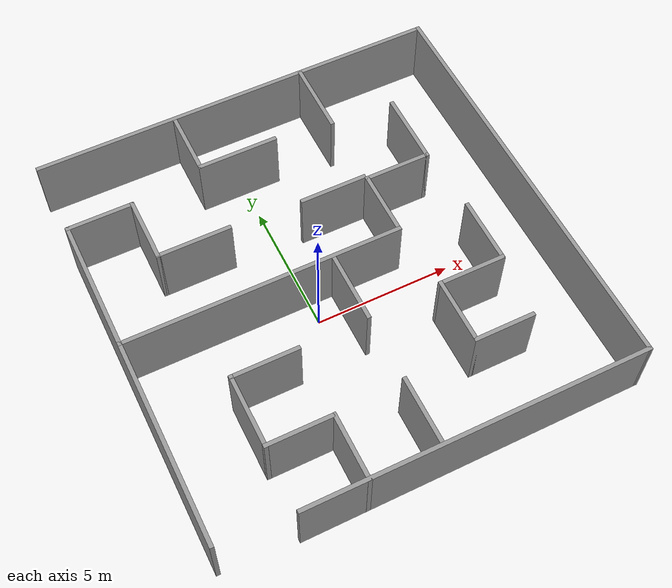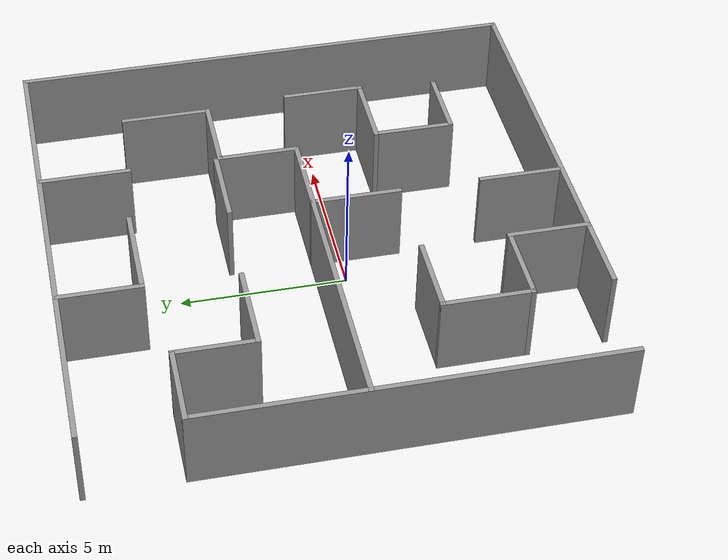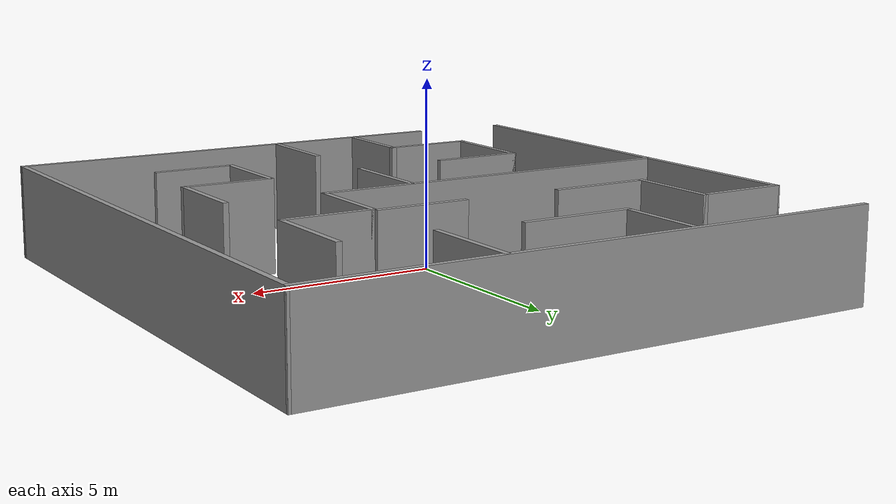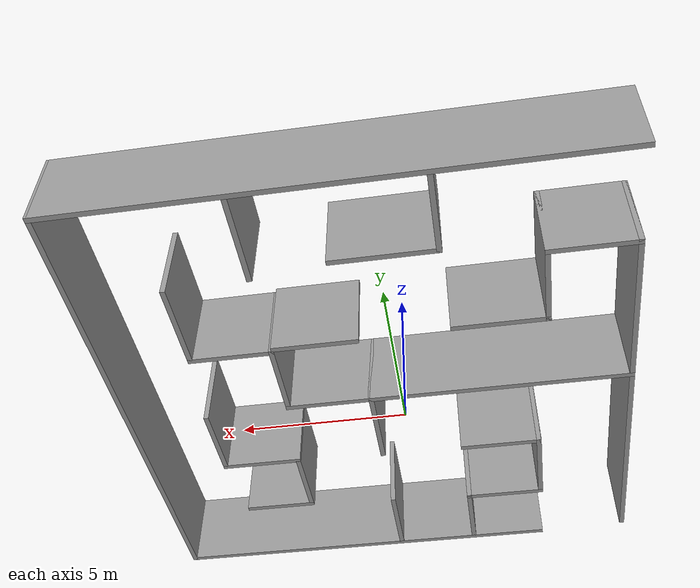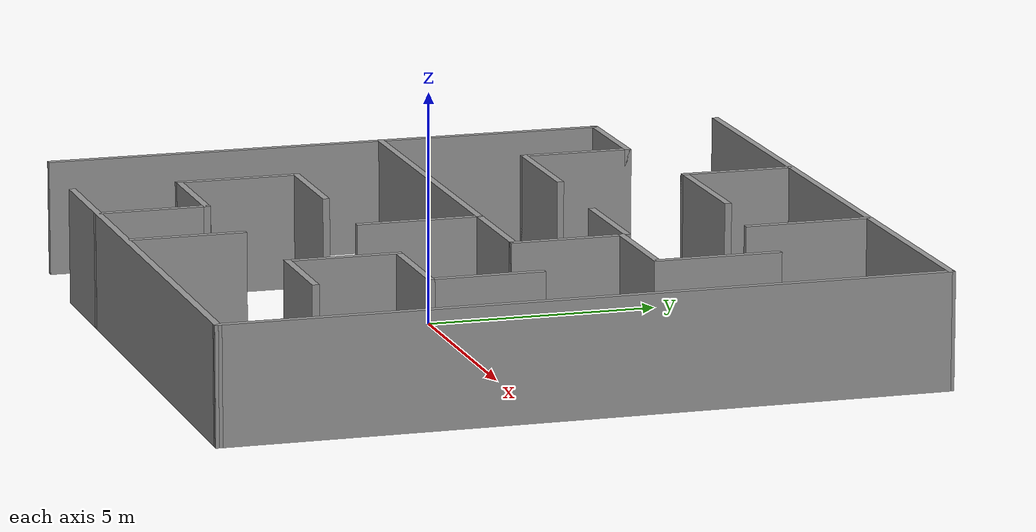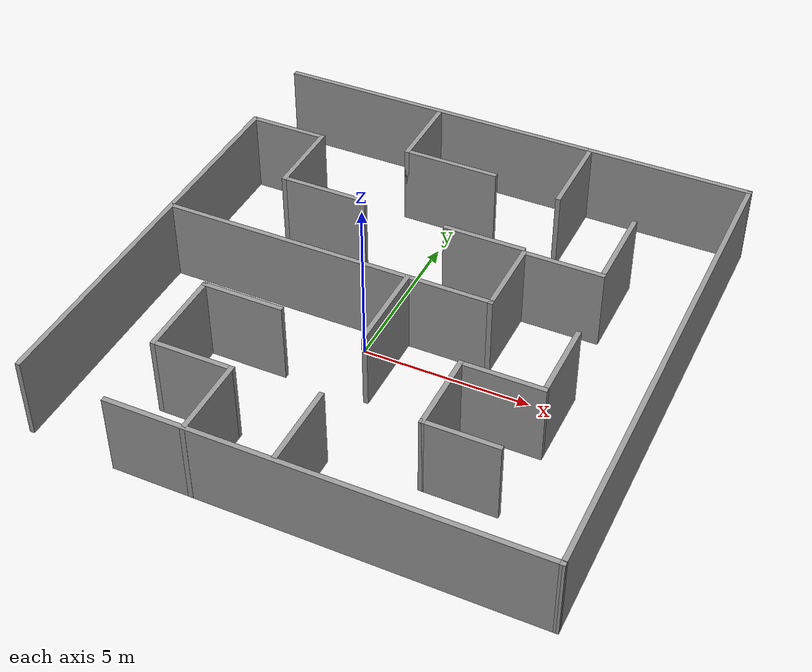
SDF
<?xml version='1.0'?>
<sdf version='1.6'>
  <model name='World3'>
    <pose frame=''>0.863855 0.919645 0 0 -0 0</pose>
    <link name='Wall_0'>
      <collision name='Wall_0_Collision'>
        <geometry>
          <box>
            <size>12.5 0.15 2.5</size>
          </box>
        </geometry>
        <pose frame=''>0 0 1.25 0 -0 0</pose>
      </collision>
      <visual name='Wall_0_Visual'>
        <pose frame=''>0 0 1.25 0 -0 0</pose>
        <geometry>
          <box>
            <size>12.5 0.15 2.5</size>
          </box>
        </geometry>
        <material>
          <script>
            <uri>file://media/materials/scripts/gazebo.material</uri>
            <name>Gazebo/Grey</name>
          </script>
          <ambient>1 1 1 1</ambient>
        </material>
        <meta>
          <layer>0</layer>
        </meta>
      </visual>
      <pose frame=''>1.41371 -7.69097 0 0 -0 0</pose>
    </link>
    <link name='Wall_10'>
      <collision name='Wall_10_Collision'>
        <geometry>
          <box>
            <size>10.25 0.15 2.5</size>
          </box>
        </geometry>
        <pose frame=''>0 0 1.25 0 -0 0</pose>
      </collision>
      <visual name='Wall_10_Visual'>
        <pose frame=''>0 0 1.25 0 -0 0</pose>
        <geometry>
          <box>
            <size>10.25 0.15 2.5</size>
          </box>
        </geometry>
        <material>
          <script>
            <uri>file://media/materials/scripts/gazebo.material</uri>
            <name>Gazebo/Grey</name>
          </script>
          <ambient>1 1 1 1</ambient>
        </material>
        <meta>
          <layer>0</layer>
        </meta>
      </visual>
      <pose frame=''>-2.47875 -0.0907 0 0 -0 0</pose>
    </link>
    <link name='Wall_11'>
      <collision name='Wall_11_Collision'>
        <geometry>
          <box>
            <size>2.5 0.15 2.5</size>
          </box>
        </geometry>
        <pose frame=''>0 0 1.25 0 -0 0</pose>
      </collision>
      <visual name='Wall_11_Visual'>
        <pose frame=''>0 0 1.25 0 -0 0</pose>
        <geometry>
          <box>
            <size>2.5 0.15 2.5</size>
          </box>
        </geometry>
        <material>
          <script>
            <uri>file://media/materials/scripts/gazebo.material</uri>
            <name>Gazebo/Grey</name>
          </script>
          <ambient>1 1 1 1</ambient>
        </material>
        <meta>
          <layer>0</layer>
        </meta>
      </visual>
      <pose frame=''>2.57125 1.0843 0 0 -0 1.5708</pose>
    </link>
    <link name='Wall_12'>
      <collision name='Wall_12_Collision'>
        <geometry>
          <box>
            <size>2.5 0.15 2.5</size>
          </box>
        </geometry>
        <pose frame=''>0 0 1.25 0 -0 0</pose>
      </collision>
      <visual name='Wall_12_Visual'>
        <pose frame=''>0 0 1.25 0 -0 0</pose>
        <geometry>
          <box>
            <size>2.5 0.15 2.5</size>
          </box>
        </geometry>
        <material>
          <script>
            <uri>file://media/materials/scripts/gazebo.material</uri>
            <name>Gazebo/Grey</name>
          </script>
          <ambient>1 1 1 1</ambient>
        </material>
        <meta>
          <layer>0</layer>
        </meta>
      </visual>
      <pose frame=''>3.74625 2.2593 0 0 -0 0</pose>
    </link>
    <link name='Wall_13'>
      <collision name='Wall_13_Collision'>
        <geometry>
          <box>
            <size>2.75 0.15 2.5</size>
          </box>
        </geometry>
        <pose frame=''>0 0 1.25 0 -0 0</pose>
      </collision>
      <visual name='Wall_13_Visual'>
        <pose frame=''>0 0 1.25 0 -0 0</pose>
        <geometry>
          <box>
            <size>2.75 0.15 2.5</size>
          </box>
        </geometry>
        <material>
          <script>
            <uri>file://media/materials/scripts/gazebo.material</uri>
            <name>Gazebo/Grey</name>
          </script>
          <ambient>1 1 1 1</ambient>
        </material>
        <meta>
          <layer>0</layer>
        </meta>
      </visual>
      <pose frame=''>4.92125 3.5593 0 0 -0 1.5708</pose>
    </link>
    <link name='Wall_15'>
      <collision name='Wall_15_Collision'>
        <geometry>
          <box>
            <size>2.5 0.15 2.5</size>
          </box>
        </geometry>
        <pose frame=''>0 0 1.25 0 -0 0</pose>
      </collision>
      <visual name='Wall_15_Visual'>
        <pose frame=''>0 0 1.25 0 -0 0</pose>
        <geometry>
          <box>
            <size>2.5 0.15 2.5</size>
          </box>
        </geometry>
        <material>
          <script>
            <uri>file://media/materials/scripts/gazebo.material</uri>
            <name>Gazebo/Grey</name>
          </script>
          <ambient>1 1 1 1</ambient>
        </material>
        <meta>
          <layer>0</layer>
        </meta>
      </visual>
      <pose frame=''>1.30952 2.38327 0 0 -0 0</pose>
    </link>
    <link name='Wall_17'>
      <collision name='Wall_17_Collision'>
        <geometry>
          <box>
            <size>2.5 0.15 2.5</size>
          </box>
        </geometry>
        <pose frame=''>0 0 1.25 0 -0 0</pose>
      </collision>
      <visual name='Wall_17_Visual'>
        <pose frame=''>0 0 1.25 0 -0 0</pose>
        <geometry>
          <box>
            <size>2.5 0.15 2.5</size>
          </box>
        </geometry>
        <material>
          <script>
            <uri>file://media/materials/scripts/gazebo.material</uri>
            <name>Gazebo/Grey</name>
          </script>
          <ambient>1 1 1 1</ambient>
        </material>
        <meta>
          <layer>0</layer>
        </meta>
      </visual>
      <pose frame=''>5.1428 -1.44672 0 0 -0 -1.5708</pose>
    </link>
    <link name='Wall_18'>
      <collision name='Wall_18_Collision'>
        <geometry>
          <box>
            <size>2.5 0.15 2.5</size>
          </box>
        </geometry>
        <pose frame=''>0 0 1.25 0 -0 0</pose>
      </collision>
      <visual name='Wall_18_Visual'>
        <pose frame=''>0 0 1.25 0 -0 0</pose>
        <geometry>
          <box>
            <size>2.5 0.15 2.5</size>
          </box>
        </geometry>
        <material>
          <script>
            <uri>file://media/materials/scripts/gazebo.material</uri>
            <name>Gazebo/Grey</name>
          </script>
          <ambient>1 1 1 1</ambient>
        </material>
        <meta>
          <layer>0</layer>
        </meta>
      </visual>
      <pose frame=''>3.9678 -2.62172 0 0 -0 3.14159</pose>
    </link>
    <link name='Wall_19'>
      <collision name='Wall_19_Collision'>
        <geometry>
          <box>
            <size>2.5 0.15 2.5</size>
          </box>
        </geometry>
        <pose frame=''>0 0 1.25 0 -0 0</pose>
      </collision>
      <visual name='Wall_19_Visual'>
        <pose frame=''>0 0 1.25 0 -0 0</pose>
        <geometry>
          <box>
            <size>2.5 0.15 2.5</size>
          </box>
        </geometry>
        <material>
          <script>
            <uri>file://media/materials/scripts/gazebo.material</uri>
            <name>Gazebo/Grey</name>
          </script>
          <ambient>1 1 1 1</ambient>
        </material>
        <meta>
          <layer>0</layer>
        </meta>
      </visual>
      <pose frame=''>2.7928 -3.79672 0 0 -0 -1.5708</pose>
    </link>
    <link name='Wall_2'>
      <collision name='Wall_2_Collision'>
        <geometry>
          <box>
            <size>15.25 0.15 2.5</size>
          </box>
        </geometry>
        <pose frame=''>0 0 1.25 0 -0 0</pose>
      </collision>
      <visual name='Wall_2_Visual'>
        <pose frame=''>0 0 1.25 0 -0 0</pose>
        <geometry>
          <box>
            <size>15.25 0.15 2.5</size>
          </box>
        </geometry>
        <material>
          <script>
            <uri>file://media/materials/scripts/gazebo.material</uri>
            <name>Gazebo/Grey</name>
          </script>
          <ambient>1 1 1 1</ambient>
        </material>
        <meta>
          <layer>0</layer>
        </meta>
      </visual>
      <pose frame=''>-0.039092 7.69325 0 0 -0 0</pose>
    </link>
    <link name='Wall_20'>
      <collision name='Wall_20_Collision'>
        <geometry>
          <box>
            <size>2.25 0.15 2.5</size>
          </box>
        </geometry>
        <pose frame=''>0 0 1.25 0 -0 0</pose>
      </collision>
      <visual name='Wall_20_Visual'>
        <pose frame=''>0 0 1.25 0 -0 0</pose>
        <geometry>
          <box>
            <size>2.25 0.15 2.5</size>
          </box>
        </geometry>
        <material>
          <script>
            <uri>file://media/materials/scripts/gazebo.material</uri>
            <name>Gazebo/Grey</name>
          </script>
          <ambient>1 1 1 1</ambient>
        </material>
        <meta>
          <layer>0</layer>
        </meta>
      </visual>
      <pose frame=''>3.8428 -4.97172 0 0 -0 0</pose>
    </link>
    <link name='Wall_22'>
      <collision name='Wall_22_Collision'>
        <geometry>
          <box>
            <size>2.5 0.15 2.5</size>
          </box>
        </geometry>
        <pose frame=''>0 0 1.25 0 -0 0</pose>
      </collision>
      <visual name='Wall_22_Visual'>
        <pose frame=''>0 0 1.25 0 -0 0</pose>
        <geometry>
          <box>
            <size>2.5 0.15 2.5</size>
          </box>
        </geometry>
        <material>
          <script>
            <uri>file://media/materials/scripts/gazebo.material</uri>
            <name>Gazebo/Grey</name>
          </script>
          <ambient>1 1 1 1</ambient>
        </material>
        <meta>
          <layer>0</layer>
        </meta>
      </visual>
      <pose frame=''>0.074179 -6.39466 0 0 -0 -1.5708</pose>
    </link>
    <link name='Wall_24'>
      <collision name='Wall_24_Collision'>
        <geometry>
          <box>
            <size>2.5 0.15 2.5</size>
          </box>
        </geometry>
        <pose frame=''>0 0 1.25 0 -0 0</pose>
      </collision>
      <visual name='Wall_24_Visual'>
        <pose frame=''>0 0 1.25 0 -0 0</pose>
        <geometry>
          <box>
            <size>2.5 0.15 2.5</size>
          </box>
        </geometry>
        <material>
          <script>
            <uri>file://media/materials/scripts/gazebo.material</uri>
            <name>Gazebo/Grey</name>
          </script>
          <ambient>1 1 1 1</ambient>
        </material>
        <meta>
          <layer>0</layer>
        </meta>
      </visual>
      <pose frame=''>-2.46013 -6.51863 0 0 -0 1.5708</pose>
    </link>
    <link name='Wall_25'>
      <collision name='Wall_25_Collision'>
        <geometry>
          <box>
            <size>2.5 0.15 2.5</size>
          </box>
        </geometry>
        <pose frame=''>0 0 1.25 0 -0 0</pose>
      </collision>
      <visual name='Wall_25_Visual'>
        <pose frame=''>0 0 1.25 0 -0 0</pose>
        <geometry>
          <box>
            <size>2.5 0.15 2.5</size>
          </box>
        </geometry>
        <material>
          <script>
            <uri>file://media/materials/scripts/gazebo.material</uri>
            <name>Gazebo/Grey</name>
          </script>
          <ambient>1 1 1 1</ambient>
        </material>
        <meta>
          <layer>0</layer>
        </meta>
      </visual>
      <pose frame=''>-3.63513 -5.34363 0 0 -0 3.14159</pose>
    </link>
    <link name='Wall_26'>
      <collision name='Wall_26_Collision'>
        <geometry>
          <box>
            <size>2.75 0.15 2.5</size>
          </box>
        </geometry>
        <pose frame=''>0 0 1.25 0 -0 0</pose>
      </collision>
      <visual name='Wall_26_Visual'>
        <pose frame=''>0 0 1.25 0 -0 0</pose>
        <geometry>
          <box>
            <size>2.75 0.15 2.5</size>
          </box>
        </geometry>
        <material>
          <script>
            <uri>file://media/materials/scripts/gazebo.material</uri>
            <name>Gazebo/Grey</name>
          </script>
          <ambient>1 1 1 1</ambient>
        </material>
        <meta>
          <layer>0</layer>
        </meta>
      </visual>
      <pose frame=''>-4.81013 -4.04363 0 0 -0 1.5708</pose>
    </link>
    <link name='Wall_27'>
      <collision name='Wall_27_Collision'>
        <geometry>
          <box>
            <size>2.5 0.15 2.5</size>
          </box>
        </geometry>
        <pose frame=''>0 0 1.25 0 -0 0</pose>
      </collision>
      <visual name='Wall_27_Visual'>
        <pose frame=''>0 0 1.25 0 -0 0</pose>
        <geometry>
          <box>
            <size>2.5 0.15 2.5</size>
          </box>
        </geometry>
        <material>
          <script>
            <uri>file://media/materials/scripts/gazebo.material</uri>
            <name>Gazebo/Grey</name>
          </script>
          <ambient>1 1 1 1</ambient>
        </material>
        <meta>
          <layer>0</layer>
        </meta>
      </visual>
      <pose frame=''>-3.63513 -2.74363 0 0 -0 0</pose>
    </link>
    <link name='Wall_29'>
      <collision name='Wall_29_Collision'>
        <geometry>
          <box>
            <size>2.75 0.15 2.5</size>
          </box>
        </geometry>
        <pose frame=''>0 0 1.25 0 -0 0</pose>
      </collision>
      <visual name='Wall_29_Visual'>
        <pose frame=''>0 0 1.25 0 -0 0</pose>
        <geometry>
          <box>
            <size>2.75 0.15 2.5</size>
          </box>
        </geometry>
        <material>
          <script>
            <uri>file://media/materials/scripts/gazebo.material</uri>
            <name>Gazebo/Grey</name>
          </script>
          <ambient>1 1 1 1</ambient>
        </material>
        <meta>
          <layer>0</layer>
        </meta>
      </visual>
      <pose frame=''>0.074179 -1.3907 0 0 -0 -1.5708</pose>
    </link>
    <link name='Wall_3'>
      <collision name='Wall_3_Collision'>
        <geometry>
          <box>
            <size>15.5344 0.15 2.5</size>
          </box>
        </geometry>
        <pose frame=''>0 0 1.25 0 -0 0</pose>
      </collision>
      <visual name='Wall_3_Visual'>
        <pose frame=''>0 0 1.25 0 -0 0</pose>
        <geometry>
          <box>
            <size>15.5344 0.15 2.5</size>
          </box>
        </geometry>
        <material>
          <script>
            <uri>file://media/materials/scripts/gazebo.material</uri>
            <name>Gazebo/Grey</name>
          </script>
          <ambient>1 1 1 1</ambient>
        </material>
        <meta>
          <layer>0</layer>
        </meta>
      </visual>
      <pose frame=''>7.54981 0.001142 0 0 -0 -1.56574</pose>
    </link>
    <link name='Wall_31'>
      <collision name='Wall_31_Collision'>
        <geometry>
          <box>
            <size>2.5 0.15 2.5</size>
          </box>
        </geometry>
        <pose frame=''>0 0 1.25 0 -0 0</pose>
      </collision>
      <visual name='Wall_31_Visual'>
        <pose frame=''>0 0 1.25 0 -0 0</pose>
        <geometry>
          <box>
            <size>2.5 0.15 2.5</size>
          </box>
        </geometry>
        <material>
          <script>
            <uri>file://media/materials/scripts/gazebo.material</uri>
            <name>Gazebo/Grey</name>
          </script>
          <ambient>1 1 1 1</ambient>
        </material>
        <meta>
          <layer>0</layer>
        </meta>
      </visual>
      <pose frame=''>-2.46013 6.45791 0 0 -0 -1.5708</pose>
    </link>
    <link name='Wall_32'>
      <collision name='Wall_32_Collision'>
        <geometry>
          <box>
            <size>3 0.15 2.5</size>
          </box>
        </geometry>
        <pose frame=''>0 0 1.25 0 -0 0</pose>
      </collision>
      <visual name='Wall_32_Visual'>
        <pose frame=''>0 0 1.25 0 -0 0</pose>
        <geometry>
          <box>
            <size>3 0.15 2.5</size>
          </box>
        </geometry>
        <material>
          <script>
            <uri>file://media/materials/scripts/gazebo.material</uri>
            <name>Gazebo/Grey</name>
          </script>
          <ambient>1 1 1 1</ambient>
        </material>
        <meta>
          <layer>0</layer>
        </meta>
      </visual>
      <pose frame=''>-1.03513 5.28291 0 0 -0 0</pose>
    </link>
    <link name='Wall_34'>
      <collision name='Wall_34_Collision'>
        <geometry>
          <box>
            <size>2.75 0.15 2.5</size>
          </box>
        </geometry>
        <pose frame=''>0 0 1.25 0 -0 0</pose>
      </collision>
      <visual name='Wall_34_Visual'>
        <pose frame=''>0 0 1.25 0 -0 0</pose>
        <geometry>
          <box>
            <size>2.75 0.15 2.5</size>
          </box>
        </geometry>
        <material>
          <script>
            <uri>file://media/materials/scripts/gazebo.material</uri>
            <name>Gazebo/Grey</name>
          </script>
          <ambient>1 1 1 1</ambient>
        </material>
        <meta>
          <layer>0</layer>
        </meta>
      </visual>
      <pose frame=''>2.54815 6.33291 0 0 -0 -1.5708</pose>
    </link>
    <link name='Wall_5'>
      <collision name='Wall_5_Collision'>
        <geometry>
          <box>
            <size>12.5 0.15 2.5</size>
          </box>
        </geometry>
        <pose frame=''>0 0 1.25 0 -0 0</pose>
      </collision>
      <visual name='Wall_5_Visual'>
        <pose frame=''>0 0 1.25 0 -0 0</pose>
        <geometry>
          <box>
            <size>12.5 0.15 2.5</size>
          </box>
        </geometry>
        <material>
          <script>
            <uri>file://media/materials/scripts/gazebo.material</uri>
            <name>Gazebo/Grey</name>
          </script>
          <ambient>1 1 1 1</ambient>
        </material>
        <meta>
          <layer>0</layer>
        </meta>
      </visual>
      <pose frame=''>-7.52875 -1.33761 0 0 -0 1.5708</pose>
    </link>
    <link name='Wall_6'>
      <collision name='Wall_6_Collision'>
        <geometry>
          <box>
            <size>2.5 0.15 2.5</size>
          </box>
        </geometry>
        <pose frame=''>0 0 1.25 0 -0 0</pose>
      </collision>
      <visual name='Wall_6_Visual'>
        <pose frame=''>0 0 1.25 0 -0 0</pose>
        <geometry>
          <box>
            <size>2.5 0.15 2.5</size>
          </box>
        </geometry>
        <material>
          <script>
            <uri>file://media/materials/scripts/gazebo.material</uri>
            <name>Gazebo/Grey</name>
          </script>
          <ambient>1 1 1 1</ambient>
        </material>
        <meta>
          <layer>0</layer>
        </meta>
      </visual>
      <pose frame=''>-6.35375 4.83739 0 0 -0 0</pose>
    </link>
    <link name='Wall_7'>
      <collision name='Wall_7_Collision'>
        <geometry>
          <box>
            <size>2.5 0.15 2.5</size>
          </box>
        </geometry>
        <pose frame=''>0 0 1.25 0 -0 0</pose>
      </collision>
      <visual name='Wall_7_Visual'>
        <pose frame=''>0 0 1.25 0 -0 0</pose>
        <geometry>
          <box>
            <size>2.5 0.15 2.5</size>
          </box>
        </geometry>
        <material>
          <script>
            <uri>file://media/materials/scripts/gazebo.material</uri>
            <name>Gazebo/Grey</name>
          </script>
          <ambient>1 1 1 1</ambient>
        </material>
        <meta>
          <layer>0</layer>
        </meta>
      </visual>
      <pose frame=''>-5.17875 3.66239 0 0 -0 -1.5708</pose>
    </link>
    <link name='Wall_8'>
      <collision name='Wall_8_Collision'>
        <geometry>
          <box>
            <size>2.75 0.15 2.5</size>
          </box>
        </geometry>
        <pose frame=''>0 0 1.25 0 -0 0</pose>
      </collision>
      <visual name='Wall_8_Visual'>
        <pose frame=''>0 0 1.25 0 -0 0</pose>
        <geometry>
          <box>
            <size>2.75 0.15 2.5</size>
          </box>
        </geometry>
        <material>
          <script>
            <uri>file://media/materials/scripts/gazebo.material</uri>
            <name>Gazebo/Grey</name>
          </script>
          <ambient>1 1 1 1</ambient>
        </material>
        <meta>
          <layer>0</layer>
        </meta>
      </visual>
      <pose frame=''>-3.87875 2.48739 0 0 -0 0</pose>
    </link>
    <static>1</static>
  </model>
</sdf>
